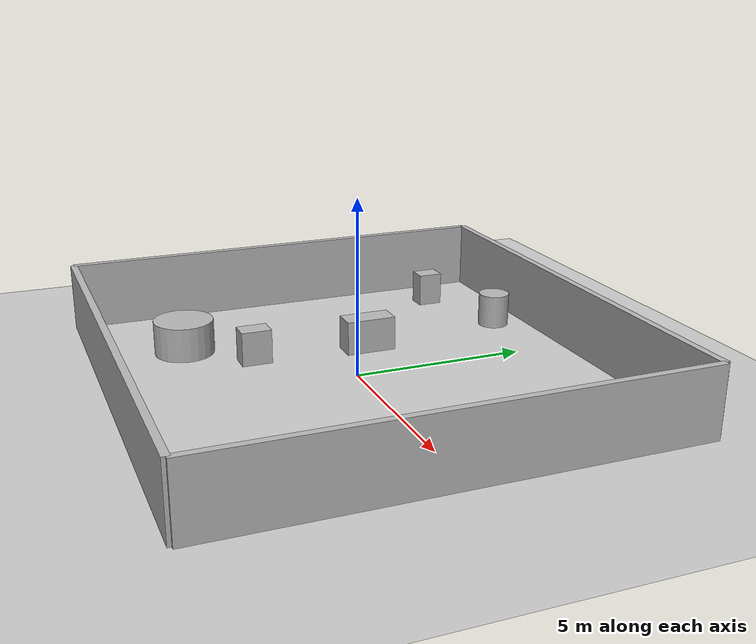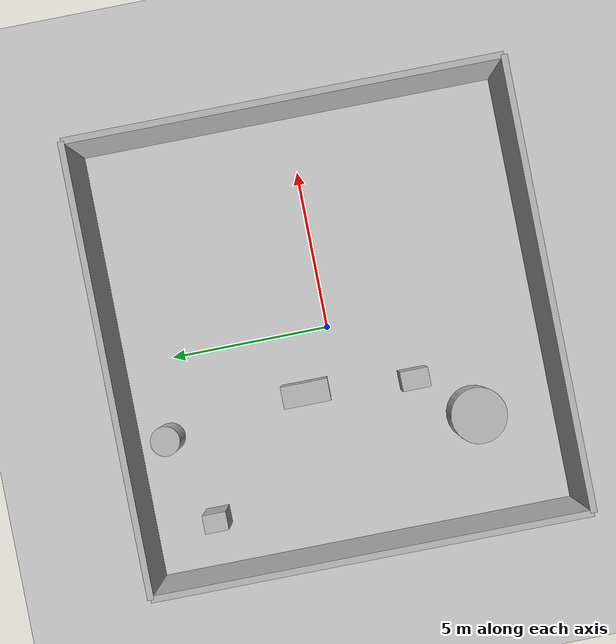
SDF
<?xml version="1.0"?>
<sdf version="1.6">
  <world name="env_35">

    <include><uri>model://ground_plane</uri></include>
    <include><uri>model://sun</uri></include>

    <!-- WALLS -->
    <model name="wall_north"><static>true</static><pose>0 6.63518263698965 1 0 0 0</pose>
      <link name="link"><collision name="collision">
        <geometry><box><size>13.71441284838567 0.2 2</size></box></geometry>
      </collision><visual name="visual">
        <geometry><box><size>13.71441284838567 0.2 2</size></box></geometry>
      </visual></link>
    </model>

    <model name="wall_south"><static>true</static><pose>0 -6.63518263698965 1 0 0 0</pose>
      <link name="link"><collision name="collision">
        <geometry><box><size>13.71441284838567 0.2 2</size></box></geometry>
      </collision><visual name="visual">
        <geometry><box><size>13.71441284838567 0.2 2</size></box></geometry>
      </visual></link>
    </model>

    <model name="wall_east"><static>true</static><pose>6.857206424192835 0 1 0 0 1.57</pose>
      <link name="link"><collision name="collision">
        <geometry><box><size>13.2703652739793 0.2 2</size></box></geometry>
      </collision><visual name="visual">
        <geometry><box><size>13.2703652739793 0.2 2</size></box></geometry>
      </visual></link>
    </model>

    <model name="wall_west"><static>true</static><pose>-6.857206424192835 0 1 0 0 1.57</pose>
      <link name="link"><collision name="collision">
        <geometry><box><size>13.2703652739793 0.2 2</size></box></geometry>
      </collision><visual name="visual">
        <geometry><box><size>13.2703652739793 0.2 2</size></box></geometry>
      </visual></link>
    </model>

    <!-- SENSOR -->

    <model name="lidar_sensor">
      <static>true</static>
      <pose>-2.173783175955694 -0.29846099582391883 0.4 0 0 0</pose>
      <link name="link">
        <sensor name="lidar" type="ray">
          <pose>0 0 0 0 0 0</pose>
          <visualize>true</visualize>
          <always_on>true</always_on>
          <update_rate>10</update_rate>
          <ray>
            <scan><horizontal>
              <samples>240</samples>
              <resolution>1</resolution>
              <min_angle>-3.14159</min_angle>
              <max_angle>3.14159</max_angle>
            </horizontal></scan>
            <range><min>0.15</min><max>20.0</max><resolution>0.01</resolution></range>
          </ray>
          <plugin name="lidar_plugin" filename="liblidar_plugin.so"/>
        </sensor>
      </link>
    </model>

    <!-- OBSTACLES -->

    <model name="obstacle_0">
      <static>true</static>
      <pose>-2.4705209034239237 5.54755273404247 0.5 0 0 0</pose>
      <link name="link">
        <collision name="collision">
          <geometry><cylinder><radius>0.46</radius><length>1.0</length></cylinder></geometry>
        </collision>
        <visual name="visual">
          <geometry><cylinder><radius>0.46</radius><length>1.0</length></cylinder></geometry>
        </visual>
      </link>
    </model>

    <model name="obstacle_1">
      <static>true</static>
      <pose>-2.0841879308577225 -2.341260746732296 0.5 0 0 0</pose>
      <link name="link">
        <collision name="collision">
          <geometry><box><size>0.61 0.88 1.0</size></box></geometry>
        </collision>
        <visual name="visual">
          <geometry><box><size>0.61 0.88 1.0</size></box></geometry>
        </visual>
      </link>
    </model>

    <model name="obstacle_2">
      <static>true</static>
      <pose>-3.5507191732631136 -4.0408163857859 0.5 0 0 0</pose>
      <link name="link">
        <collision name="collision">
          <geometry><cylinder><radius>0.87</radius><length>1.0</length></cylinder></geometry>
        </collision>
        <visual name="visual">
          <geometry><cylinder><radius>0.87</radius><length>1.0</length></cylinder></geometry>
        </visual>
      </link>
    </model>

    <model name="obstacle_3">
      <static>true</static>
      <pose>-1.8729575197300914 1.0458867628596877 0.5 0 0 0</pose>
      <link name="link">
        <collision name="collision">
          <geometry><box><size>0.69 1.47 1.0</size></box></geometry>
        </collision>
        <visual name="visual">
          <geometry><box><size>0.69 1.47 1.0</size></box></geometry>
        </visual>
      </link>
    </model>

    <model name="obstacle_4">
      <static>true</static>
      <pose>-5.210345750655951 4.516966344940234 0.5 0 0 0</pose>
      <link name="link">
        <collision name="collision">
          <geometry><box><size>0.57 0.74 1.0</size></box></geometry>
        </collision>
        <visual name="visual">
          <geometry><box><size>0.57 0.74 1.0</size></box></geometry>
        </visual>
      </link>
    </model>

  </world>
</sdf>
